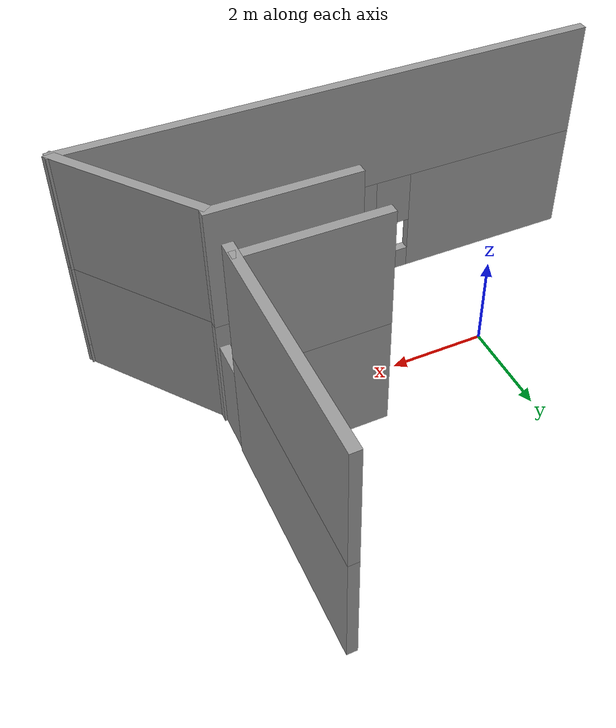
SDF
<sdf version="1.4">
 <model name="ramp_House_Building">
  <link name="Door_1">
   <collision name="Door_1_Collision">
    <geometry><box><size>1 0.2 2</size></box></geometry>
    <pose>0 0 1 0 -0 0</pose>
   </collision>
   <visual name="Door_1_Visual">
    <pose>0 0 1 0 -0 0</pose>
    <geometry><box><size>1 0.2 2</size></box></geometry>
    <material>
     <script><uri>file://media/materials/scripts/gazebo.material</uri><name>Gazebo/Grey</name></script>
    </material>
   </visual>
   <velocity_decay><linear>0</linear><angular>0</angular></velocity_decay>
   <pose>5.48425 0.271481 0 0 -0 1.57504</pose>
  </link>
  <link name="Wall_20">
   <collision name="Wall_20_Collision">
    <geometry><box><size>2.83342 0.2 2.5</size></box></geometry>
    <pose>0 0 1.25 0 -0 0</pose>
   </collision>
   <visual name="Wall_20_Visual">
    <pose>0 0 1.25 0 -0 0</pose>
    <geometry><box><size>2.83342 0.2 2.5</size></box></geometry>
    <material>
     <script><uri>file://media/materials/scripts/gazebo.material</uri><name>Gazebo/Grey</name></script>
    </material>
   </visual>
   <velocity_decay><linear>0</linear><angular>0</angular></velocity_decay>
   <pose>4.16276 1.0308 0 0 -0 3.14159</pose>
  </link>
  <link name="Wall_22">
   <collision name="Wall_22_Collision">
    <geometry><box><size>2.91322 0.2 2.5</size></box></geometry>
    <pose>0 0 1.25 0 -0 0</pose>
   </collision>
   <visual name="Wall_22_Visual">
    <pose>0 0 1.25 0 -0 0</pose>
    <geometry><box><size>2.91322 0.2 2.5</size></box></geometry>
    <material>
     <script><uri>file://media/materials/scripts/gazebo.material</uri><name>Gazebo/Grey</name></script>
    </material>
   </visual>
   <velocity_decay><linear>0</linear><angular>0</angular></velocity_decay>
   <pose>4.17606 -0.192811 0 0 -0 3.14159</pose>
  </link>
  <link name="Wall_26">
   <collision name="Wall_26_Collision">
    <geometry><box><size>4.53583 0.2 2.5</size></box></geometry>
    <pose>0 0 1.25 0 -0 0</pose>
   </collision>
   <visual name="Wall_26_Visual">
    <pose>0 0 1.25 0 -0 0</pose>
    <geometry><box><size>4.53583 0.2 2.5</size></box></geometry>
    <material>
     <script><uri>file://media/materials/scripts/gazebo.material</uri><name>Gazebo/Grey</name></script>
    </material>
   </visual>
   <velocity_decay><linear>0</linear><angular>0</angular></velocity_decay>
   <pose>5.50607 2.98591 0 0 0 -1.5708</pose>
  </link>
  <link name="Wall_29">
   <collision name="Wall_29_Collision">
    <geometry><box><size>11.2222 0.2 2.5</size></box></geometry>
    <pose>0 0 1.25 0 -0 0</pose>
   </collision>
   <visual name="Wall_29_Visual">
    <pose>0 0 1.25 0 -0 0</pose>
    <geometry><box><size>11.2222 0.2 2.5</size></box></geometry>
    <material>
     <script><uri>file://media/materials/scripts/gazebo.material</uri><name>Gazebo/Grey</name></script>
    </material>
   </visual>
   <velocity_decay><linear>0</linear><angular>0</angular></velocity_decay>
   <pose>1.91815 -2.82751 2.5 0 -0 0</pose>
  </link>
  <link name="Wall_30">
   <collision name="Wall_30_Collision">
    <geometry><box><size>3.34336 0.2 2.5</size></box></geometry>
    <pose>0 0 1.25 0 -0 0</pose>
   </collision>
   <visual name="Wall_30_Visual">
    <pose>0 0 1.25 0 -0 0</pose>
    <geometry><box><size>3.34336 0.2 2.5</size></box></geometry>
    <material>
     <script><uri>file://media/materials/scripts/gazebo.material</uri><name>Gazebo/Grey</name></script>
    </material>
   </visual>
   <velocity_decay><linear>0</linear><angular>0</angular></velocity_decay>
   <pose>6.48693 -1.56966 2.5 0 -0 2.21376</pose>
  </link>
  <link name="Wall_33">
   <collision name="Wall_33_Collision">
    <geometry><box><size>2.83342 0.2 2.5</size></box></geometry>
    <pose>0 0 1.25 0 -0 0</pose>
   </collision>
   <visual name="Wall_33_Visual">
    <pose>0 0 1.25 0 -0 0</pose>
    <geometry><box><size>2.83342 0.2 2.5</size></box></geometry>
    <material>
     <script><uri>file://media/materials/scripts/gazebo.material</uri><name>Gazebo/Grey</name></script>
    </material>
   </visual>
   <velocity_decay><linear>0</linear><angular>0</angular></velocity_decay>
   <pose>4.16276 1.0308 2.5 0 -0 3.14159</pose>
  </link>
  <link name="Wall_34">
   <collision name="Wall_34_Collision">
    <geometry><box><size>2.91322 0.2 2.5</size></box></geometry>
    <pose>0 0 1.25 0 -0 0</pose>
   </collision>
   <visual name="Wall_34_Visual">
    <pose>0 0 1.25 0 -0 0</pose>
    <geometry><box><size>2.91322 0.2 2.5</size></box></geometry>
    <material>
     <script><uri>file://media/materials/scripts/gazebo.material</uri><name>Gazebo/Grey</name></script>
    </material>
   </visual>
   <velocity_decay><linear>0</linear><angular>0</angular></velocity_decay>
   <pose>4.17606 -0.192811 2.5 0 -0 3.14159</pose>
  </link>
  <link name="Wall_36">
   <collision name="Wall_36_Collision">
    <geometry><box><size>4.53583 0.2 2.5</size></box></geometry>
    <pose>0 0 1.25 0 -0 0</pose>
   </collision>
   <visual name="Wall_36_Visual">
    <pose>0 0 1.25 0 -0 0</pose>
    <geometry><box><size>4.53583 0.2 2.5</size></box></geometry>
    <material>
     <script><uri>file://media/materials/scripts/gazebo.material</uri><name>Gazebo/Grey</name></script>
    </material>
   </visual>
   <velocity_decay><linear>0</linear><angular>0</angular></velocity_decay>
   <pose>5.50607 2.98591 2.5 0 0 -1.5708</pose>
  </link>
  <link name="Wall_7">
   <pose>1.91815 -2.82751 0 0 -0 0</pose>
   <visual name="Wall_7_Visual_0">
    <pose>-3.62608 0 1.25 0 -0 0</pose>
    <geometry><box><size>3.97008 0.2 2.5</size></box></geometry>
    <material>
     <script><uri>file://media/materials/scripts/gazebo.material</uri><name>Gazebo/Grey</name></script>
    </material>
   </visual>
   <collision name="Wall_7_Collision_0">
    <geometry><box><size>3.97008 0.2 2.5</size></box></geometry>
    <pose>-3.62608 0 1.25 0 -0 0</pose>
   </collision>
   <visual name="Wall_7_Visual_1">
    <pose>1.98504 0 0.25 0 -0 0</pose>
    <geometry><box><size>7.25216 0.2 0.5</size></box></geometry>
    <material>
     <script><uri>file://media/materials/scripts/gazebo.material</uri><name>Gazebo/Grey</name></script>
    </material>
   </visual>
   <collision name="Wall_7_Collision_1">
    <geometry><box><size>7.25216 0.2 0.5</size></box></geometry>
    <pose>1.98504 0 0.25 0 -0 0</pose>
   </collision>
   <visual name="Wall_7_Visual_2">
    <pose>2.38504 0 1.5 0 -0 0</pose>
    <geometry><box><size>6.45216 0.2 2</size></box></geometry>
    <material>
     <script><uri>file://media/materials/scripts/gazebo.material</uri><name>Gazebo/Grey</name></script>
    </material>
   </visual>
   <collision name="Wall_7_Collision_2">
    <geometry><box><size>6.45216 0.2 2</size></box></geometry>
    <pose>2.38504 0 1.5 0 -0 0</pose>
   </collision>
   <visual name="Wall_7_Visual_3">
    <pose>-1.24104 0 1.9 0 -0 0</pose>
    <geometry><box><size>0.8 0.2 1.2</size></box></geometry>
    <material>
     <script><uri>file://media/materials/scripts/gazebo.material</uri><name>Gazebo/Grey</name></script>
    </material>
   </visual>
   <collision name="Wall_7_Collision_3">
    <geometry><box><size>0.8 0.2 1.2</size></box></geometry>
    <pose>-1.24104 0 1.9 0 -0 0</pose>
   </collision>
  </link>
  <link name="Wall_8">
   <collision name="Wall_8_Collision">
    <geometry><box><size>3.34336 0.2 2.5</size></box></geometry>
    <pose>0 0 1.25 0 -0 0</pose>
   </collision>
   <visual name="Wall_8_Visual">
    <pose>0 0 1.25 0 -0 0</pose>
    <geometry><box><size>3.34336 0.2 2.5</size></box></geometry>
    <material>
     <script><uri>file://media/materials/scripts/gazebo.material</uri><name>Gazebo/Grey</name></script>
    </material>
   </visual>
   <velocity_decay><linear>0</linear><angular>0</angular></velocity_decay>
   <pose>6.48693 -1.56966 0 0 -0 2.21376</pose>
  </link>
  <static>1</static>
 </model>
</sdf>
